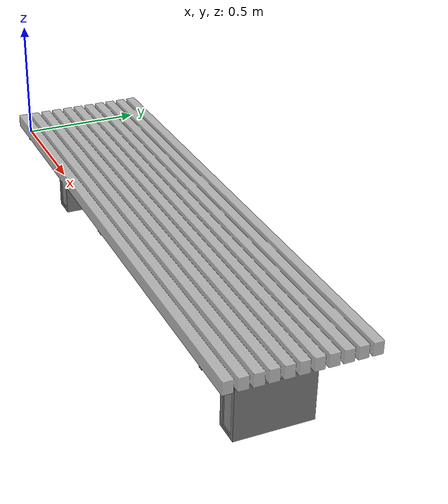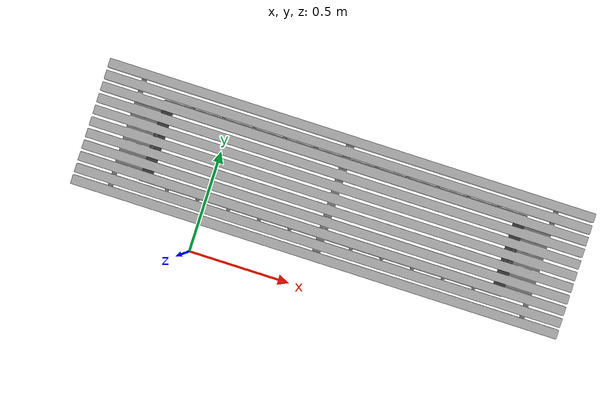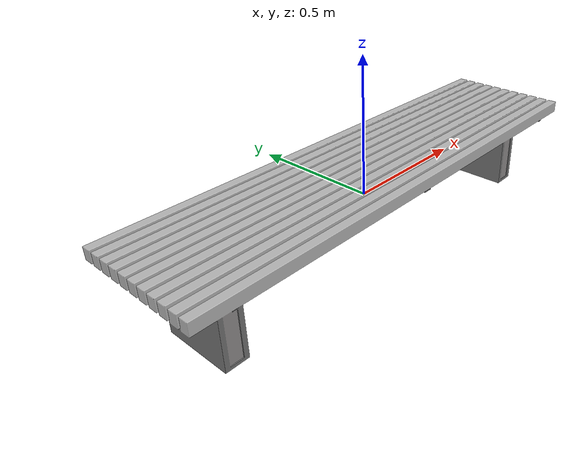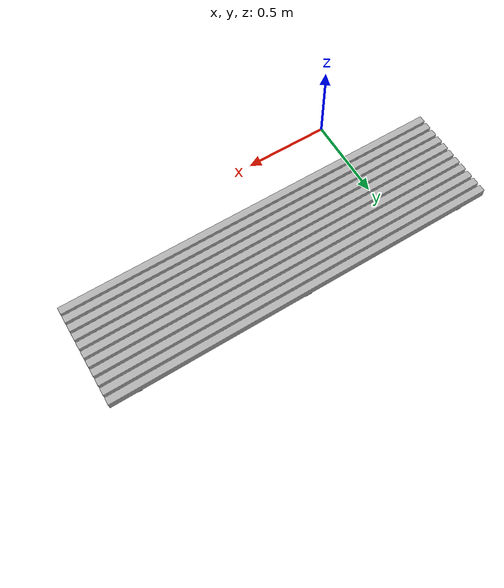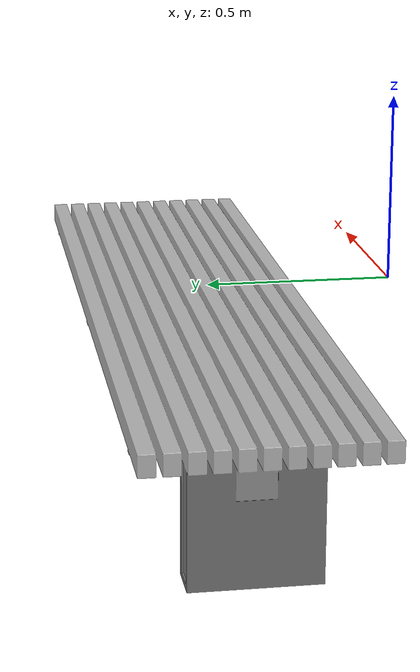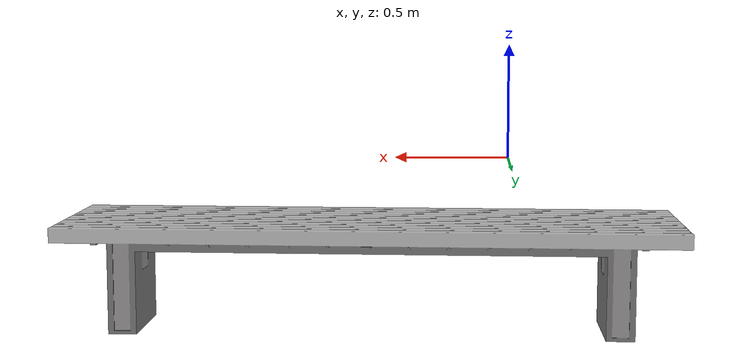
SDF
<?xml version="1.0" ?>
<sdf version="1.5">
  <model name="little_bench">
    <static>true</static>
    <link name="little_bench_link">
      <collision name="collision">
        <geometry>
          <mesh>
            <uri>model://little_bench/meshes/little_bench.stl</uri>
          </mesh>
        </geometry>
      </collision>
      <visual name="visual">
        <geometry>
          <mesh>
            <uri>model://little_bench/meshes/little_bench.dae</uri>
          </mesh>
        </geometry>
      </visual>
    </link>
  </model>
</sdf>
